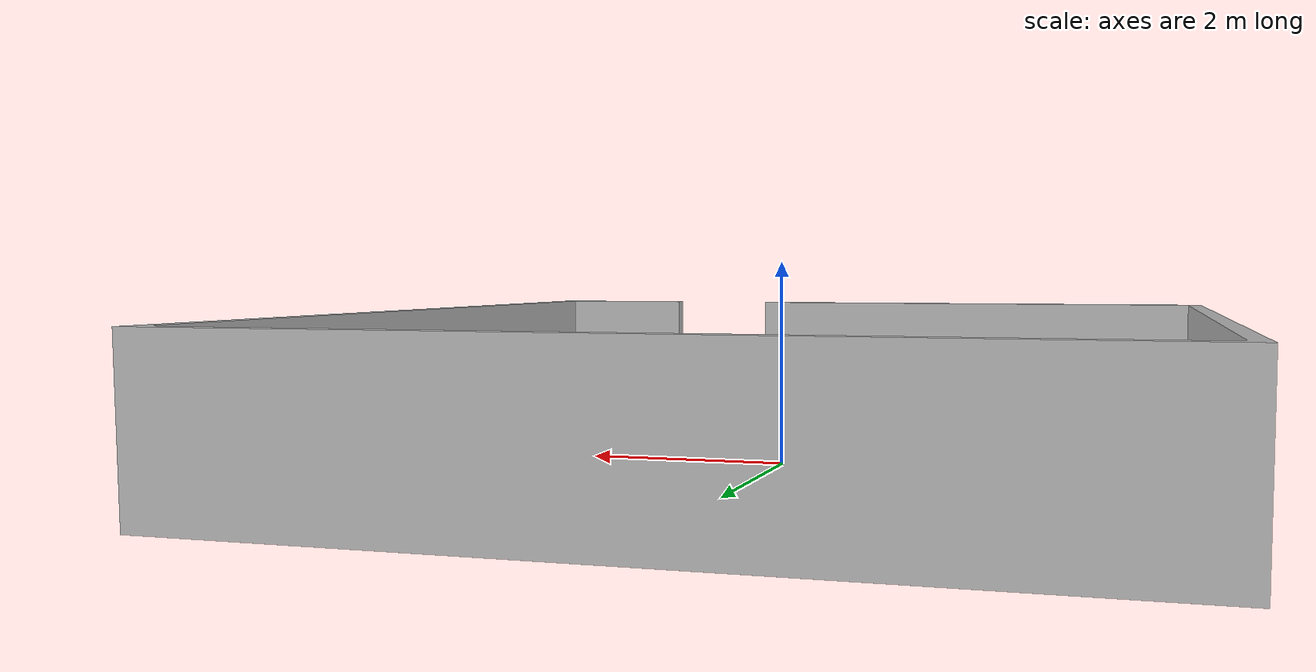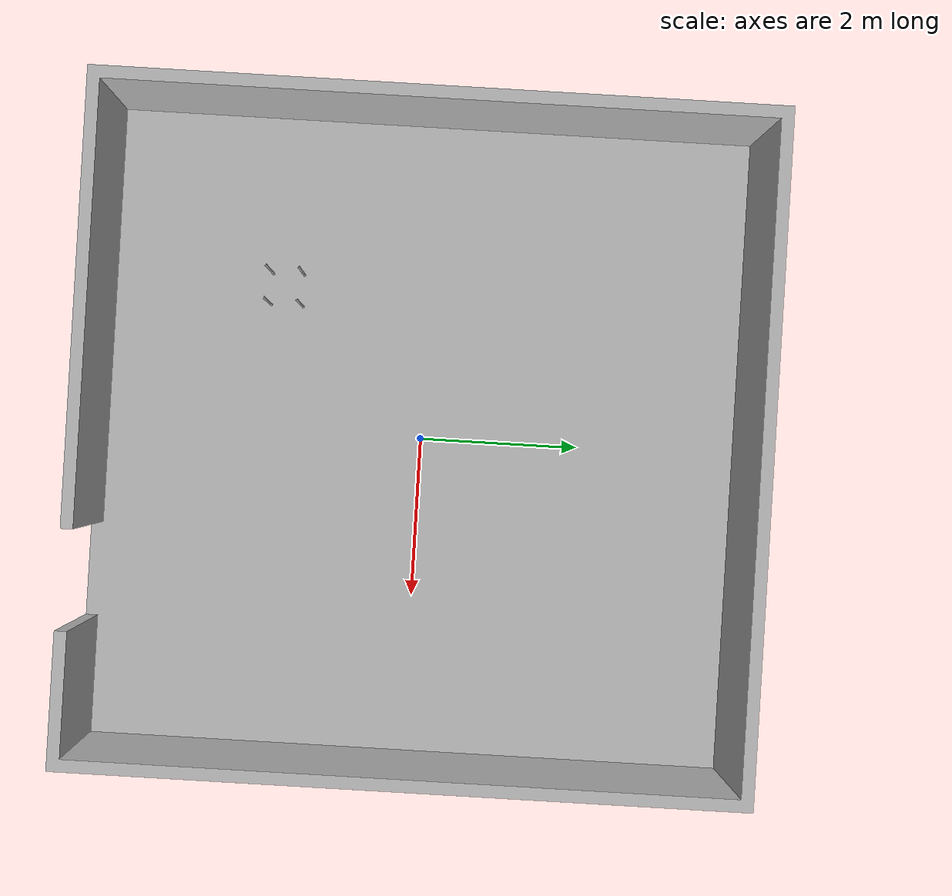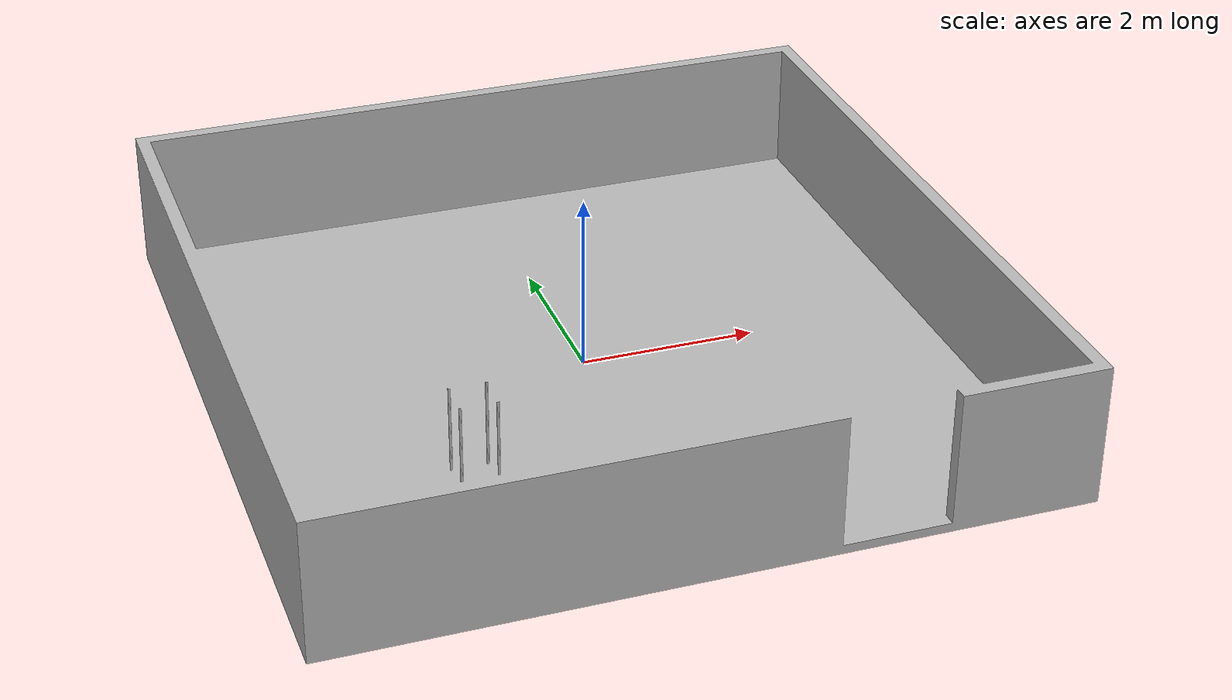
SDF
<?xml version="1.0" encoding="utf-8"?>
<sdf version="1.6">
	<model name="world_with_chair_v1">
		<pose>0 0 0 0 0 0</pose>
		<link name="world:1">
			<pose>0.0 0.0 0.0 0.0 -0.0 0.0</pose>
			<inertial>
				<mass>109561.095352097</mass>
				<pose>-0.03712085590881589 0.07846773381187871 0.3550745139141569 -0.0 -0.0 -0.0</pose>
				<inertia>
					<ixx>940272.4966106038</ixx>
					<ixy>-16801.270092409984</ixy>
					<ixz>1596.1746886879966</ixz>
					<iyy>968089.9752392006</iyy>
					<iyz>-3405.1666036728934</iyz>
					<izz>1852423.2435482037</izz>
				</inertia>
			</inertial>
			<collision name="world:1_collision">
				<geometry>
					<mesh>
						<uri>model://world_with_chair_v1/meshes/world.stl</uri>
						<scale>0.001 0.001 0.001</scale>
					</mesh>
				</geometry>
			</collision>
			<visual name="world:1_visual">
				<geometry>
					<mesh>
						<uri>model://world_with_chair_v1/meshes/world.stl</uri>
						<scale>0.001 0.001 0.001</scale>
					</mesh>
				</geometry>
			</visual>
		</link>
	</model>
</sdf>
